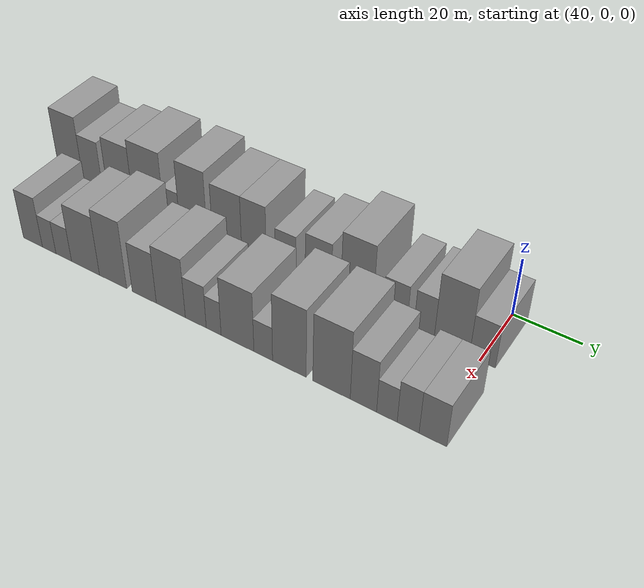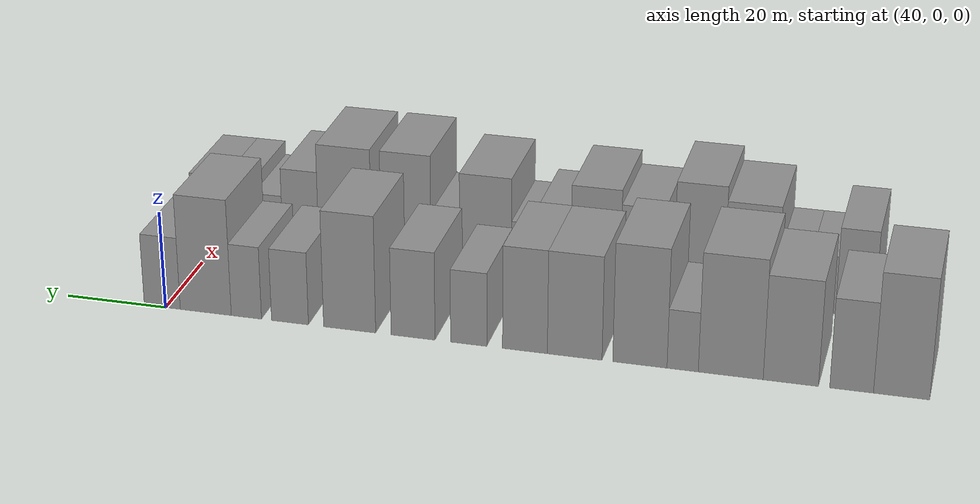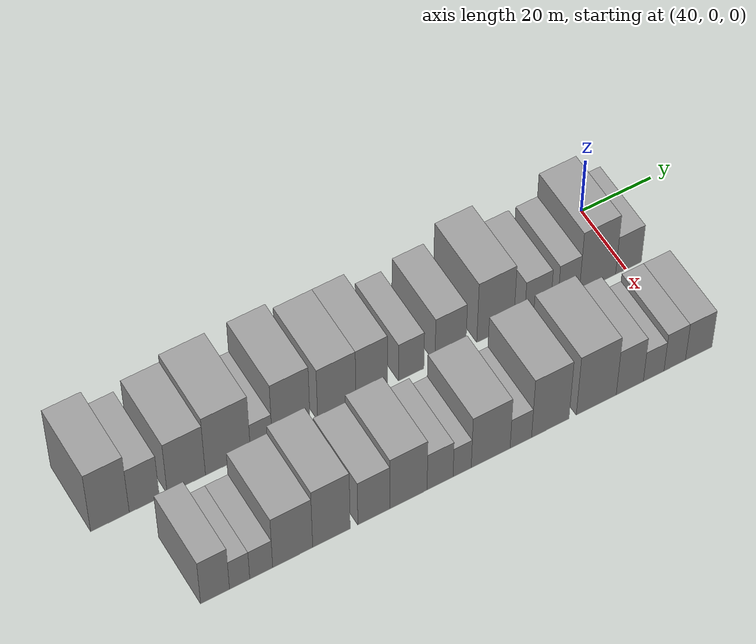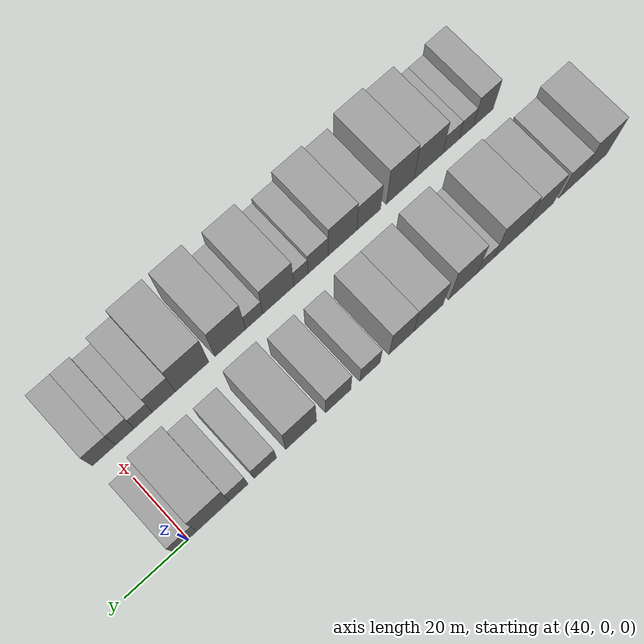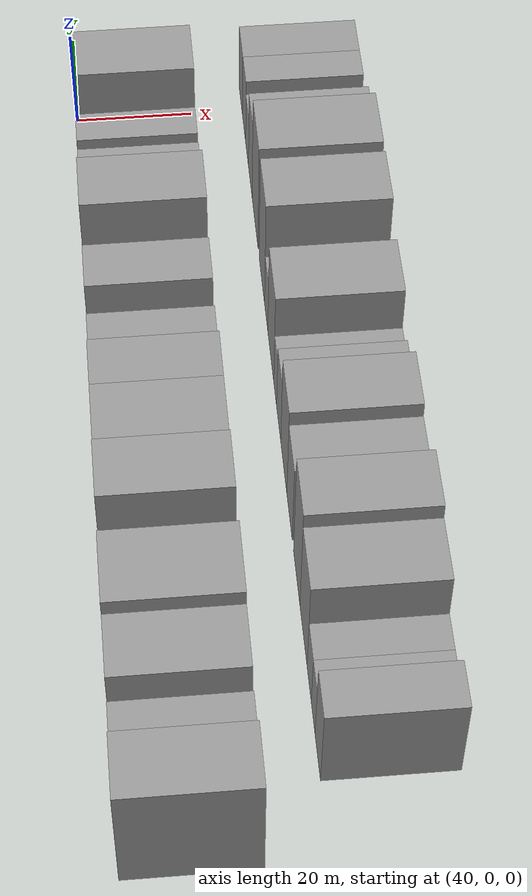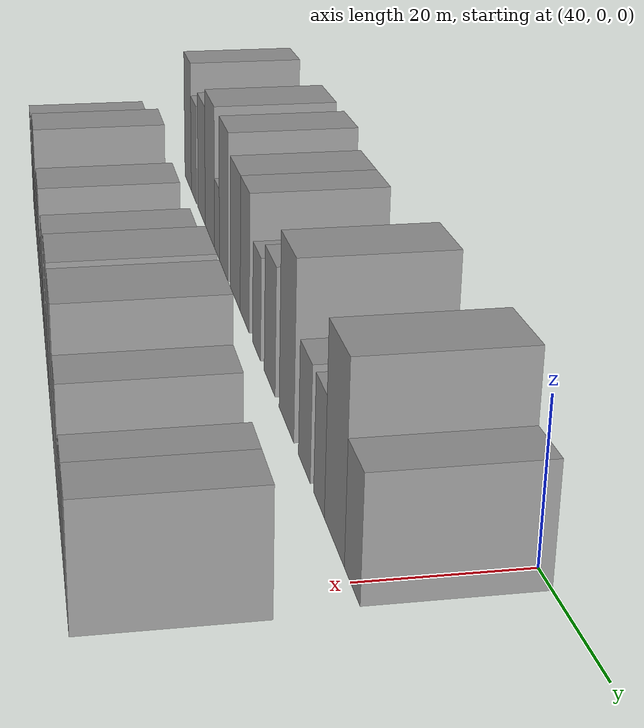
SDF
<sdf version="1.6">
 <world name="default">
  <model name="building_16">
   <static>1</static>
   <pose>50.0000 -139.1707 0 0.000000 0.000000 0.000000</pose>
   <link name="link">
    <pose>0 0 12.00 0 0 0</pose>
    <collision name="collision"><geometry><box><size>20.0000 9.9072 24.0000</size></box></geometry></collision>
    <visual name="visual">
     <cast_shadows>0</cast_shadows>
     <geometry><box><size>20.0000 9.9072 24.0000</size></box></geometry>
     <material>
      <script>
       <uri>model://grey_wall/materials/scripts</uri>
       <uri>model://grey_wall/materials/textures</uri>
       <name>vrc/grey_wall</name>
      </script>
     </material>
    </visual>
   </link>
  </model>
  <model name="building_17">
   <static>1</static>
   <pose>50.0000 -130.3272 0 0.000000 0.000000 0.000000</pose>
   <link name="link">
    <pose>0 0 9.00 0 0 0</pose>
    <collision name="collision"><geometry><box><size>20.0000 7.7798 18.0000</size></box></geometry></collision>
    <visual name="visual">
     <cast_shadows>0</cast_shadows>
     <geometry><box><size>20.0000 7.7798 18.0000</size></box></geometry>
     <material>
      <script>
       <uri>model://grey_wall/materials/scripts</uri>
       <uri>model://grey_wall/materials/textures</uri>
       <name>vrc/grey_wall</name>
      </script>
     </material>
    </visual>
   </link>
  </model>
  <model name="building_18">
   <static>1</static>
   <pose>50.0000 -119.4666 0 0.000000 0.000000 0.000000</pose>
   <link name="link">
    <pose>0 0 10.50 0 0 0</pose>
    <collision name="collision"><geometry><box><size>20.0000 9.9414 21.0000</size></box></geometry></collision>
    <visual name="visual">
     <cast_shadows>0</cast_shadows>
     <geometry><box><size>20.0000 9.9414 21.0000</size></box></geometry>
     <material>
      <script>
       <uri>model://grey_wall/materials/scripts</uri>
       <uri>model://grey_wall/materials/textures</uri>
       <name>vrc/grey_wall</name>
      </script>
     </material>
    </visual>
   </link>
  </model>
  <model name="building_19">
   <static>1</static>
   <pose>50.0000 -108.5932 0 0.000000 0.000000 0.000000</pose>
   <link name="link">
    <pose>0 0 12.00 0 0 0</pose>
    <collision name="collision"><geometry><box><size>20.0000 11.8054 24.0000</size></box></geometry></collision>
    <visual name="visual">
     <cast_shadows>0</cast_shadows>
     <geometry><box><size>20.0000 11.8054 24.0000</size></box></geometry>
     <material>
      <script>
       <uri>model://grey_wall/materials/scripts</uri>
       <uri>model://grey_wall/materials/textures</uri>
       <name>vrc/grey_wall</name>
      </script>
     </material>
    </visual>
   </link>
  </model>
  <model name="building_20">
   <static>1</static>
   <pose>50.0000 -99.8213 0 0.000000 0.000000 0.000000</pose>
   <link name="link">
    <pose>0 0 6.00 0 0 0</pose>
    <collision name="collision"><geometry><box><size>20.0000 5.7384 12.0000</size></box></geometry></collision>
    <visual name="visual">
     <cast_shadows>0</cast_shadows>
     <geometry><box><size>20.0000 5.7384 12.0000</size></box></geometry>
     <material>
      <script>
       <uri>model://grey_wall/materials/scripts</uri>
       <uri>model://grey_wall/materials/textures</uri>
       <name>vrc/grey_wall</name>
      </script>
     </material>
    </visual>
   </link>
  </model>
  <model name="building_21">
   <static>1</static>
   <pose>50.0000 -91.9319 0 0.000000 0.000000 0.000000</pose>
   <link name="link">
    <pose>0 0 12.00 0 0 0</pose>
    <collision name="collision"><geometry><box><size>20.0000 10.0403 24.0000</size></box></geometry></collision>
    <visual name="visual">
     <cast_shadows>0</cast_shadows>
     <geometry><box><size>20.0000 10.0403 24.0000</size></box></geometry>
     <material>
      <script>
       <uri>model://grey_wall/materials/scripts</uri>
       <uri>model://grey_wall/materials/textures</uri>
       <name>vrc/grey_wall</name>
      </script>
     </material>
    </visual>
   </link>
  </model>
  <model name="building_22">
   <static>1</static>
   <pose>50.0000 -79.7915 0 0.000000 0.000000 0.000000</pose>
   <link name="link">
    <pose>0 0 10.50 0 0 0</pose>
    <collision name="collision"><geometry><box><size>20.0000 10.2406 21.0000</size></box></geometry></collision>
    <visual name="visual">
     <cast_shadows>0</cast_shadows>
     <geometry><box><size>20.0000 10.2406 21.0000</size></box></geometry>
     <material>
      <script>
       <uri>model://grey_wall/materials/scripts</uri>
       <uri>model://grey_wall/materials/textures</uri>
       <name>vrc/grey_wall</name>
      </script>
     </material>
    </visual>
   </link>
  </model>
  <model name="building_23">
   <static>1</static>
   <pose>50.0000 -70.4306 0 0.000000 0.000000 0.000000</pose>
   <link name="link">
    <pose>0 0 10.50 0 0 0</pose>
    <collision name="collision"><geometry><box><size>20.0000 8.4810 21.0000</size></box></geometry></collision>
    <visual name="visual">
     <cast_shadows>0</cast_shadows>
     <geometry><box><size>20.0000 8.4810 21.0000</size></box></geometry>
     <material>
      <script>
       <uri>model://grey_wall/materials/scripts</uri>
       <uri>model://grey_wall/materials/textures</uri>
       <name>vrc/grey_wall</name>
      </script>
     </material>
    </visual>
   </link>
  </model>
  <model name="building_24">
   <static>1</static>
   <pose>50.0000 -59.7306 0 0.000000 0.000000 0.000000</pose>
   <link name="link">
    <pose>0 0 7.50 0 0 0</pose>
    <collision name="collision"><geometry><box><size>20.0000 6.9190 15.0000</size></box></geometry></collision>
    <visual name="visual">
     <cast_shadows>0</cast_shadows>
     <geometry><box><size>20.0000 6.9190 15.0000</size></box></geometry>
     <material>
      <script>
       <uri>model://grey_wall/materials/scripts</uri>
       <uri>model://grey_wall/materials/textures</uri>
       <name>vrc/grey_wall</name>
      </script>
     </material>
    </visual>
   </link>
  </model>
  <model name="building_25">
   <static>1</static>
   <pose>50.0000 -49.0280 0 0.000000 0.000000 0.000000</pose>
   <link name="link">
    <pose>0 0 9.00 0 0 0</pose>
    <collision name="collision"><geometry><box><size>20.0000 8.4862 18.0000</size></box></geometry></collision>
    <visual name="visual">
     <cast_shadows>0</cast_shadows>
     <geometry><box><size>20.0000 8.4862 18.0000</size></box></geometry>
     <material>
      <script>
       <uri>model://grey_wall/materials/scripts</uri>
       <uri>model://grey_wall/materials/textures</uri>
       <name>vrc/grey_wall</name>
      </script>
     </material>
    </visual>
   </link>
  </model>
  <model name="building_26">
   <static>1</static>
   <pose>50.0000 -36.6869 0 0.000000 0.000000 0.000000</pose>
   <link name="link">
    <pose>0 0 12.00 0 0 0</pose>
    <collision name="collision"><geometry><box><size>20.0000 10.1959 24.0000</size></box></geometry></collision>
    <visual name="visual">
     <cast_shadows>0</cast_shadows>
     <geometry><box><size>20.0000 10.1959 24.0000</size></box></geometry>
     <material>
      <script>
       <uri>model://grey_wall/materials/scripts</uri>
       <uri>model://grey_wall/materials/textures</uri>
       <name>vrc/grey_wall</name>
      </script>
     </material>
    </visual>
   </link>
  </model>
  <model name="building_27">
   <static>1</static>
   <pose>50.0000 -24.9346 0 0.000000 0.000000 0.000000</pose>
   <link name="link">
    <pose>0 0 7.50 0 0 0</pose>
    <collision name="collision"><geometry><box><size>20.0000 7.3088 15.0000</size></box></geometry></collision>
    <visual name="visual">
     <cast_shadows>0</cast_shadows>
     <geometry><box><size>20.0000 7.3088 15.0000</size></box></geometry>
     <material>
      <script>
       <uri>model://grey_wall/materials/scripts</uri>
       <uri>model://grey_wall/materials/textures</uri>
       <name>vrc/grey_wall</name>
      </script>
     </material>
    </visual>
   </link>
  </model>
  <model name="building_28">
   <static>1</static>
   <pose>50.0000 -16.2581 0 0.000000 0.000000 0.000000</pose>
   <link name="link">
    <pose>0 0 7.50 0 0 0</pose>
    <collision name="collision"><geometry><box><size>20.0000 6.0442 15.0000</size></box></geometry></collision>
    <visual name="visual">
     <cast_shadows>0</cast_shadows>
     <geometry><box><size>20.0000 6.0442 15.0000</size></box></geometry>
     <material>
      <script>
       <uri>model://grey_wall/materials/scripts</uri>
       <uri>model://grey_wall/materials/textures</uri>
       <name>vrc/grey_wall</name>
      </script>
     </material>
    </visual>
   </link>
  </model>
  <model name="building_29">
   <static>1</static>
   <pose>50.0000 -8.1010 0 0.000000 0.000000 0.000000</pose>
   <link name="link">
    <pose>0 0 12.00 0 0 0</pose>
    <collision name="collision"><geometry><box><size>20.0000 10.2699 24.0000</size></box></geometry></collision>
    <visual name="visual">
     <cast_shadows>0</cast_shadows>
     <geometry><box><size>20.0000 10.2699 24.0000</size></box></geometry>
     <material>
      <script>
       <uri>model://grey_wall/materials/scripts</uri>
       <uri>model://grey_wall/materials/textures</uri>
       <name>vrc/grey_wall</name>
      </script>
     </material>
    </visual>
   </link>
  </model>
  <model name="building_30">
   <static>1</static>
   <pose>50.0000 0.6903 0 0.000000 0.000000 0.000000</pose>
   <link name="link">
    <pose>0 0 7.50 0 0 0</pose>
    <collision name="collision"><geometry><box><size>20.0000 7.3128 15.0000</size></box></geometry></collision>
    <visual name="visual">
     <cast_shadows>0</cast_shadows>
     <geometry><box><size>20.0000 7.3128 15.0000</size></box></geometry>
     <material>
      <script>
       <uri>model://grey_wall/materials/scripts</uri>
       <uri>model://grey_wall/materials/textures</uri>
       <name>vrc/grey_wall</name>
      </script>
     </material>
    </visual>
   </link>
  </model>
  <model name="building_79">
   <static>1</static>
   <pose>79.0000 -127.7725 0 0.000000 0.000000 0.000000</pose>
   <link name="link">
    <pose>0 0 9.00 0 0 0</pose>
    <collision name="collision"><geometry><box><size>20.0000 7.3794 18.0000</size></box></geometry></collision>
    <visual name="visual">
     <cast_shadows>0</cast_shadows>
     <geometry><box><size>20.0000 7.3794 18.0000</size></box></geometry>
     <material>
      <script>
       <uri>model://grey_wall/materials/scripts</uri>
       <uri>model://grey_wall/materials/textures</uri>
       <name>vrc/grey_wall</name>
      </script>
     </material>
    </visual>
   </link>
  </model>
  <model name="building_80">
   <static>1</static>
   <pose>79.0000 -121.4957 0 0.000000 0.000000 0.000000</pose>
   <link name="link">
    <pose>0 0 6.00 0 0 0</pose>
    <collision name="collision"><geometry><box><size>20.0000 5.1743 12.0000</size></box></geometry></collision>
    <visual name="visual">
     <cast_shadows>0</cast_shadows>
     <geometry><box><size>20.0000 5.1743 12.0000</size></box></geometry>
     <material>
      <script>
       <uri>model://grey_wall/materials/scripts</uri>
       <uri>model://grey_wall/materials/textures</uri>
       <name>vrc/grey_wall</name>
      </script>
     </material>
    </visual>
   </link>
  </model>
  <model name="building_81">
   <static>1</static>
   <pose>79.0000 -115.9562 0 0.000000 0.000000 0.000000</pose>
   <link name="link">
    <pose>0 0 6.00 0 0 0</pose>
    <collision name="collision"><geometry><box><size>20.0000 5.9047 12.0000</size></box></geometry></collision>
    <visual name="visual">
     <cast_shadows>0</cast_shadows>
     <geometry><box><size>20.0000 5.9047 12.0000</size></box></geometry>
     <material>
      <script>
       <uri>model://grey_wall/materials/scripts</uri>
       <uri>model://grey_wall/materials/textures</uri>
       <name>vrc/grey_wall</name>
      </script>
     </material>
    </visual>
   </link>
  </model>
  <model name="building_82">
   <static>1</static>
   <pose>79.0000 -107.8306 0 0.000000 0.000000 0.000000</pose>
   <link name="link">
    <pose>0 0 10.50 0 0 0</pose>
    <collision name="collision"><geometry><box><size>20.0000 10.3464 21.0000</size></box></geometry></collision>
    <visual name="visual">
     <cast_shadows>0</cast_shadows>
     <geometry><box><size>20.0000 10.3464 21.0000</size></box></geometry>
     <material>
      <script>
       <uri>model://grey_wall/materials/scripts</uri>
       <uri>model://grey_wall/materials/textures</uri>
       <name>vrc/grey_wall</name>
      </script>
     </material>
    </visual>
   </link>
  </model>
  <model name="building_83">
   <static>1</static>
   <pose>79.0000 -97.7690 0 0.000000 0.000000 0.000000</pose>
   <link name="link">
    <pose>0 0 12.00 0 0 0</pose>
    <collision name="collision"><geometry><box><size>20.0000 9.7768 24.0000</size></box></geometry></collision>
    <visual name="visual">
     <cast_shadows>0</cast_shadows>
     <geometry><box><size>20.0000 9.7768 24.0000</size></box></geometry>
     <material>
      <script>
       <uri>model://grey_wall/materials/scripts</uri>
       <uri>model://grey_wall/materials/textures</uri>
       <name>vrc/grey_wall</name>
      </script>
     </material>
    </visual>
   </link>
  </model>
  <model name="building_84">
   <static>1</static>
   <pose>79.0000 -86.6835 0 0.000000 0.000000 0.000000</pose>
   <link name="link">
    <pose>0 0 9.00 0 0 0</pose>
    <collision name="collision"><geometry><box><size>20.0000 8.3943 18.0000</size></box></geometry></collision>
    <visual name="visual">
     <cast_shadows>0</cast_shadows>
     <geometry><box><size>20.0000 8.3943 18.0000</size></box></geometry>
     <material>
      <script>
       <uri>model://grey_wall/materials/scripts</uri>
       <uri>model://grey_wall/materials/textures</uri>
       <name>vrc/grey_wall</name>
      </script>
     </material>
    </visual>
   </link>
  </model>
  <model name="building_85">
   <static>1</static>
   <pose>79.0000 -77.5521 0 0.000000 0.000000 0.000000</pose>
   <link name="link">
    <pose>0 0 10.50 0 0 0</pose>
    <collision name="collision"><geometry><box><size>20.0000 9.8685 21.0000</size></box></geometry></collision>
    <visual name="visual">
     <cast_shadows>0</cast_shadows>
     <geometry><box><size>20.0000 9.8685 21.0000</size></box></geometry>
     <material>
      <script>
       <uri>model://grey_wall/materials/scripts</uri>
       <uri>model://grey_wall/materials/textures</uri>
       <name>vrc/grey_wall</name>
      </script>
     </material>
    </visual>
   </link>
  </model>
  <model name="building_86">
   <static>1</static>
   <pose>79.0000 -69.1472 0 0.000000 0.000000 0.000000</pose>
   <link name="link">
    <pose>0 0 7.50 0 0 0</pose>
    <collision name="collision"><geometry><box><size>20.0000 6.9412 15.0000</size></box></geometry></collision>
    <visual name="visual">
     <cast_shadows>0</cast_shadows>
     <geometry><box><size>20.0000 6.9412 15.0000</size></box></geometry>
     <material>
      <script>
       <uri>model://grey_wall/materials/scripts</uri>
       <uri>model://grey_wall/materials/textures</uri>
       <name>vrc/grey_wall</name>
      </script>
     </material>
    </visual>
   </link>
  </model>
  <model name="building_87">
   <static>1</static>
   <pose>79.0000 -63.2422 0 0.000000 0.000000 0.000000</pose>
   <link name="link">
    <pose>0 0 6.00 0 0 0</pose>
    <collision name="collision"><geometry><box><size>20.0000 4.8688 12.0000</size></box></geometry></collision>
    <visual name="visual">
     <cast_shadows>0</cast_shadows>
     <geometry><box><size>20.0000 4.8688 12.0000</size></box></geometry>
     <material>
      <script>
       <uri>model://grey_wall/materials/scripts</uri>
       <uri>model://grey_wall/materials/textures</uri>
       <name>vrc/grey_wall</name>
      </script>
     </material>
    </visual>
   </link>
  </model>
  <model name="building_88">
   <static>1</static>
   <pose>79.0000 -55.5717 0 0.000000 0.000000 0.000000</pose>
   <link name="link">
    <pose>0 0 10.50 0 0 0</pose>
    <collision name="collision"><geometry><box><size>20.0000 10.4721 21.0000</size></box></geometry></collision>
    <visual name="visual">
     <cast_shadows>0</cast_shadows>
     <geometry><box><size>20.0000 10.4721 21.0000</size></box></geometry>
     <material>
      <script>
       <uri>model://grey_wall/materials/scripts</uri>
       <uri>model://grey_wall/materials/textures</uri>
       <name>vrc/grey_wall</name>
      </script>
     </material>
    </visual>
   </link>
  </model>
  <model name="building_89">
   <static>1</static>
   <pose>79.0000 -47.4246 0 0.000000 0.000000 0.000000</pose>
   <link name="link">
    <pose>0 0 6.00 0 0 0</pose>
    <collision name="collision"><geometry><box><size>20.0000 5.8220 12.0000</size></box></geometry></collision>
    <visual name="visual">
     <cast_shadows>0</cast_shadows>
     <geometry><box><size>20.0000 5.8220 12.0000</size></box></geometry>
     <material>
      <script>
       <uri>model://grey_wall/materials/scripts</uri>
       <uri>model://grey_wall/materials/textures</uri>
       <name>vrc/grey_wall</name>
      </script>
     </material>
    </visual>
   </link>
  </model>
  <model name="building_90">
   <static>1</static>
   <pose>79.0000 -39.4075 0 0.000000 0.000000 0.000000</pose>
   <link name="link">
    <pose>0 0 12.00 0 0 0</pose>
    <collision name="collision"><geometry><box><size>20.0000 10.2122 24.0000</size></box></geometry></collision>
    <visual name="visual">
     <cast_shadows>0</cast_shadows>
     <geometry><box><size>20.0000 10.2122 24.0000</size></box></geometry>
     <material>
      <script>
       <uri>model://grey_wall/materials/scripts</uri>
       <uri>model://grey_wall/materials/textures</uri>
       <name>vrc/grey_wall</name>
      </script>
     </material>
    </visual>
   </link>
  </model>
  <model name="building_91">
   <static>1</static>
   <pose>79.0000 -26.8087 0 0.000000 0.000000 0.000000</pose>
   <link name="link">
    <pose>0 0 12.00 0 0 0</pose>
    <collision name="collision"><geometry><box><size>20.0000 10.9853 24.0000</size></box></geometry></collision>
    <visual name="visual">
     <cast_shadows>0</cast_shadows>
     <geometry><box><size>20.0000 10.9853 24.0000</size></box></geometry>
     <material>
      <script>
       <uri>model://grey_wall/materials/scripts</uri>
       <uri>model://grey_wall/materials/textures</uri>
       <name>vrc/grey_wall</name>
      </script>
     </material>
    </visual>
   </link>
  </model>
  <model name="building_92">
   <static>1</static>
   <pose>79.0000 -17.5563 0 0.000000 0.000000 0.000000</pose>
   <link name="link">
    <pose>0 0 9.00 0 0 0</pose>
    <collision name="collision"><geometry><box><size>20.0000 7.5196 18.0000</size></box></geometry></collision>
    <visual name="visual">
     <cast_shadows>0</cast_shadows>
     <geometry><box><size>20.0000 7.5196 18.0000</size></box></geometry>
     <material>
      <script>
       <uri>model://grey_wall/materials/scripts</uri>
       <uri>model://grey_wall/materials/textures</uri>
       <name>vrc/grey_wall</name>
      </script>
     </material>
    </visual>
   </link>
  </model>
  <model name="building_93">
   <static>1</static>
   <pose>79.0000 -10.9176 0 0.000000 0.000000 0.000000</pose>
   <link name="link">
    <pose>0 0 6.00 0 0 0</pose>
    <collision name="collision"><geometry><box><size>20.0000 5.7579 12.0000</size></box></geometry></collision>
    <visual name="visual">
     <cast_shadows>0</cast_shadows>
     <geometry><box><size>20.0000 5.7579 12.0000</size></box></geometry>
     <material>
      <script>
       <uri>model://grey_wall/materials/scripts</uri>
       <uri>model://grey_wall/materials/textures</uri>
       <name>vrc/grey_wall</name>
      </script>
     </material>
    </visual>
   </link>
  </model>
  <model name="building_94">
   <static>1</static>
   <pose>79.0000 -5.0338 0 0.000000 0.000000 0.000000</pose>
   <link name="link">
    <pose>0 0 7.50 0 0 0</pose>
    <collision name="collision"><geometry><box><size>20.0000 6.0096 15.0000</size></box></geometry></collision>
    <visual name="visual">
     <cast_shadows>0</cast_shadows>
     <geometry><box><size>20.0000 6.0096 15.0000</size></box></geometry>
     <material>
      <script>
       <uri>model://grey_wall/materials/scripts</uri>
       <uri>model://grey_wall/materials/textures</uri>
       <name>vrc/grey_wall</name>
      </script>
     </material>
    </visual>
   </link>
  </model>
  <model name="building_95">
   <static>1</static>
   <pose>79.0000 1.6876 0 0.000000 0.000000 0.000000</pose>
   <link name="link">
    <pose>0 0 7.50 0 0 0</pose>
    <collision name="collision"><geometry><box><size>20.0000 7.4332 15.0000</size></box></geometry></collision>
    <visual name="visual">
     <cast_shadows>0</cast_shadows>
     <geometry><box><size>20.0000 7.4332 15.0000</size></box></geometry>
     <material>
      <script>
       <uri>model://grey_wall/materials/scripts</uri>
       <uri>model://grey_wall/materials/textures</uri>
       <name>vrc/grey_wall</name>
      </script>
     </material>
    </visual>
   </link>
  </model>
 </world>
</sdf>
